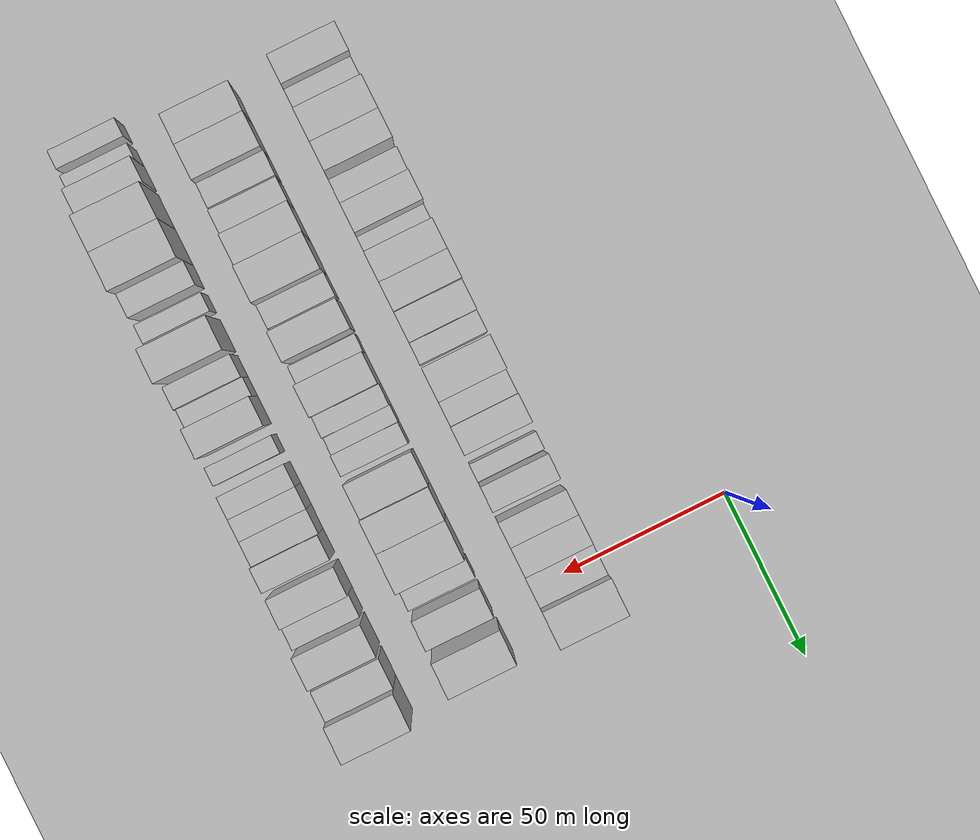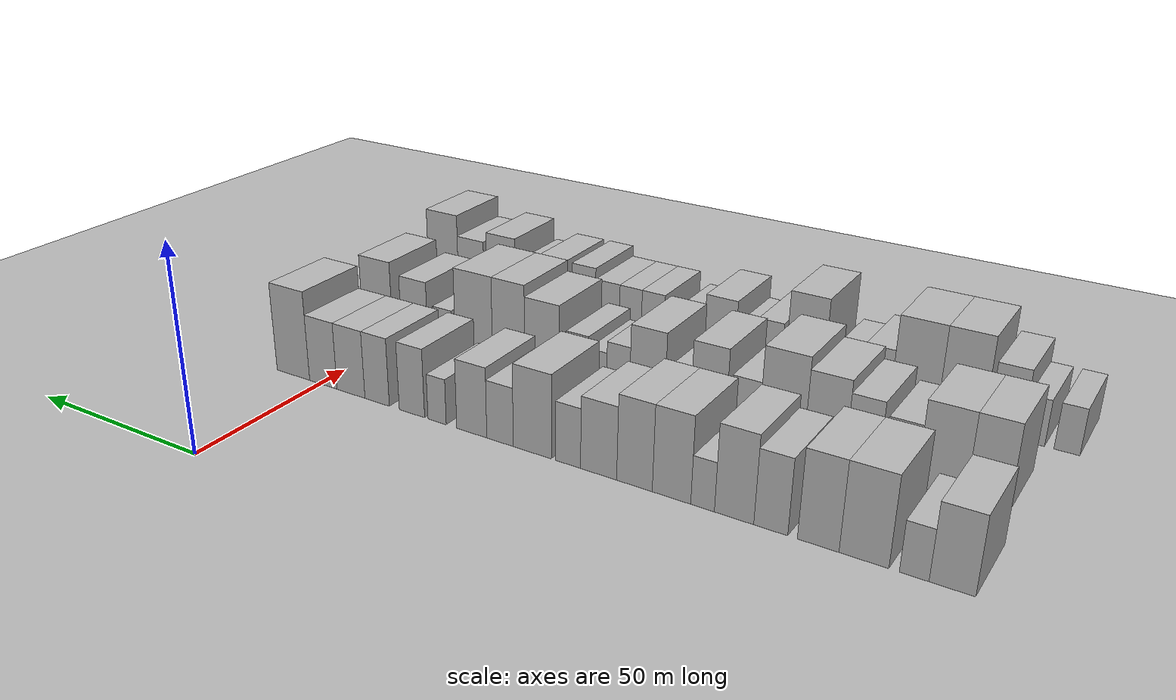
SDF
<sdf version="1.6">
 <world name="default">
  <include><name>ground_plane_1</name><uri>model://HANNAS_ground_plane</uri></include>
  <include>
   <name>ground_plane_2</name>
   <uri>model://HANNAS_ground_plane</uri>
   <pose>100 0 0  0 0 0</pose>
  </include>
  <model name="building_19">
   <static>1</static>
   <pose>50.0000 -155.4612 0 0.000000 0.000000 0.000000</pose>
   <link name="link">
    <pose>0 0 9.00 0 0 0</pose>
    <collision name="collision"><geometry><box><size>20.0000 8.6519 18.0000</size></box></geometry></collision>
    <visual name="visual">
     <cast_shadows>0</cast_shadows>
     <geometry><box><size>20.0000 8.6519 18.0000</size></box></geometry>
     <material>
      <script>
       <uri>model://HANNAS_wall/materials/scripts</uri>
       <uri>model://HANNAS_wall/materials/textures</uri>
       <name>vrc/HANNAS_wall</name>
      </script>
     </material>
    </visual>
   </link>
  </model>
  <model name="building_20">
   <static>1</static>
   <pose>50.0000 -148.3077 0 0.000000 0.000000 0.000000</pose>
   <link name="link">
    <pose>0 0 6.00 0 0 0</pose>
    <collision name="collision"><geometry><box><size>20.0000 5.6550 12.0000</size></box></geometry></collision>
    <visual name="visual">
     <cast_shadows>0</cast_shadows>
     <geometry><box><size>20.0000 5.6550 12.0000</size></box></geometry>
     <material>
      <script>
       <uri>model://HANNAS_wall/materials/scripts</uri>
       <uri>model://HANNAS_wall/materials/textures</uri>
       <name>vrc/HANNAS_wall</name>
      </script>
     </material>
    </visual>
   </link>
  </model>
  <model name="building_21">
   <static>1</static>
   <pose>50.0000 -138.5372 0 0.000000 0.000000 0.000000</pose>
   <link name="link">
    <pose>0 0 10.50 0 0 0</pose>
    <collision name="collision"><geometry><box><size>20.0000 9.8859 21.0000</size></box></geometry></collision>
    <visual name="visual">
     <cast_shadows>0</cast_shadows>
     <geometry><box><size>20.0000 9.8859 21.0000</size></box></geometry>
     <material>
      <script>
       <uri>model://HANNAS_wall/materials/scripts</uri>
       <uri>model://HANNAS_wall/materials/textures</uri>
       <name>vrc/HANNAS_wall</name>
      </script>
     </material>
    </visual>
   </link>
  </model>
  <model name="building_22">
   <static>1</static>
   <pose>50.0000 -129.3131 0 0.000000 0.000000 0.000000</pose>
   <link name="link">
    <pose>0 0 10.50 0 0 0</pose>
    <collision name="collision"><geometry><box><size>20.0000 8.5625 21.0000</size></box></geometry></collision>
    <visual name="visual">
     <cast_shadows>0</cast_shadows>
     <geometry><box><size>20.0000 8.5625 21.0000</size></box></geometry>
     <material>
      <script>
       <uri>model://HANNAS_wall/materials/scripts</uri>
       <uri>model://HANNAS_wall/materials/textures</uri>
       <name>vrc/HANNAS_wall</name>
      </script>
     </material>
    </visual>
   </link>
  </model>
  <model name="building_23">
   <static>1</static>
   <pose>50.0000 -119.3993 0 0.000000 0.000000 0.000000</pose>
   <link name="link">
    <pose>0 0 9.00 0 0 0</pose>
    <collision name="collision"><geometry><box><size>20.0000 7.2651 18.0000</size></box></geometry></collision>
    <visual name="visual">
     <cast_shadows>0</cast_shadows>
     <geometry><box><size>20.0000 7.2651 18.0000</size></box></geometry>
     <material>
      <script>
       <uri>model://HANNAS_wall/materials/scripts</uri>
       <uri>model://HANNAS_wall/materials/textures</uri>
       <name>vrc/HANNAS_wall</name>
      </script>
     </material>
    </visual>
   </link>
  </model>
  <model name="building_24">
   <static>1</static>
   <pose>50.0000 -111.4311 0 0.000000 0.000000 0.000000</pose>
   <link name="link">
    <pose>0 0 10.50 0 0 0</pose>
    <collision name="collision"><geometry><box><size>20.0000 8.6713 21.0000</size></box></geometry></collision>
    <visual name="visual">
     <cast_shadows>0</cast_shadows>
     <geometry><box><size>20.0000 8.6713 21.0000</size></box></geometry>
     <material>
      <script>
       <uri>model://HANNAS_wall/materials/scripts</uri>
       <uri>model://HANNAS_wall/materials/textures</uri>
       <name>vrc/HANNAS_wall</name>
      </script>
     </material>
    </visual>
   </link>
  </model>
  <model name="building_25">
   <static>1</static>
   <pose>50.0000 -104.4094 0 0.000000 0.000000 0.000000</pose>
   <link name="link">
    <pose>0 0 6.00 0 0 0</pose>
    <collision name="collision"><geometry><box><size>20.0000 5.3721 12.0000</size></box></geometry></collision>
    <visual name="visual">
     <cast_shadows>0</cast_shadows>
     <geometry><box><size>20.0000 5.3721 12.0000</size></box></geometry>
     <material>
      <script>
       <uri>model://HANNAS_wall/materials/scripts</uri>
       <uri>model://HANNAS_wall/materials/textures</uri>
       <name>vrc/HANNAS_wall</name>
      </script>
     </material>
    </visual>
   </link>
  </model>
  <model name="building_26">
   <static>1</static>
   <pose>50.0000 -97.2492 0 0.000000 0.000000 0.000000</pose>
   <link name="link">
    <pose>0 0 10.50 0 0 0</pose>
    <collision name="collision"><geometry><box><size>20.0000 8.9485 21.0000</size></box></geometry></collision>
    <visual name="visual">
     <cast_shadows>0</cast_shadows>
     <geometry><box><size>20.0000 8.9485 21.0000</size></box></geometry>
     <material>
      <script>
       <uri>model://HANNAS_wall/materials/scripts</uri>
       <uri>model://HANNAS_wall/materials/textures</uri>
       <name>vrc/HANNAS_wall</name>
      </script>
     </material>
    </visual>
   </link>
  </model>
  <model name="building_27">
   <static>1</static>
   <pose>50.0000 -88.4928 0 0.000000 0.000000 0.000000</pose>
   <link name="link">
    <pose>0 0 10.50 0 0 0</pose>
    <collision name="collision"><geometry><box><size>20.0000 8.5643 21.0000</size></box></geometry></collision>
    <visual name="visual">
     <cast_shadows>0</cast_shadows>
     <geometry><box><size>20.0000 8.5643 21.0000</size></box></geometry>
     <material>
      <script>
       <uri>model://HANNAS_wall/materials/scripts</uri>
       <uri>model://HANNAS_wall/materials/textures</uri>
       <name>vrc/HANNAS_wall</name>
      </script>
     </material>
    </visual>
   </link>
  </model>
  <model name="building_28">
   <static>1</static>
   <pose>50.0000 -79.7274 0 0.000000 0.000000 0.000000</pose>
   <link name="link">
    <pose>0 0 9.00 0 0 0</pose>
    <collision name="collision"><geometry><box><size>20.0000 8.9664 18.0000</size></box></geometry></collision>
    <visual name="visual">
     <cast_shadows>0</cast_shadows>
     <geometry><box><size>20.0000 8.9664 18.0000</size></box></geometry>
     <material>
      <script>
       <uri>model://HANNAS_wall/materials/scripts</uri>
       <uri>model://HANNAS_wall/materials/textures</uri>
       <name>vrc/HANNAS_wall</name>
      </script>
     </material>
    </visual>
   </link>
  </model>
  <model name="building_29">
   <static>1</static>
   <pose>50.0000 -72.0207 0 0.000000 0.000000 0.000000</pose>
   <link name="link">
    <pose>0 0 7.50 0 0 0</pose>
    <collision name="collision"><geometry><box><size>20.0000 6.4469 15.0000</size></box></geometry></collision>
    <visual name="visual">
     <cast_shadows>0</cast_shadows>
     <geometry><box><size>20.0000 6.4469 15.0000</size></box></geometry>
     <material>
      <script>
       <uri>model://HANNAS_wall/materials/scripts</uri>
       <uri>model://HANNAS_wall/materials/textures</uri>
       <name>vrc/HANNAS_wall</name>
      </script>
     </material>
    </visual>
   </link>
  </model>
  <model name="building_30">
   <static>1</static>
   <pose>50.0000 -62.7804 0 0.000000 0.000000 0.000000</pose>
   <link name="link">
    <pose>0 0 10.50 0 0 0</pose>
    <collision name="collision"><geometry><box><size>20.0000 10.0338 21.0000</size></box></geometry></collision>
    <visual name="visual">
     <cast_shadows>0</cast_shadows>
     <geometry><box><size>20.0000 10.0338 21.0000</size></box></geometry>
     <material>
      <script>
       <uri>model://HANNAS_wall/materials/scripts</uri>
       <uri>model://HANNAS_wall/materials/textures</uri>
       <name>vrc/HANNAS_wall</name>
      </script>
     </material>
    </visual>
   </link>
  </model>
  <model name="building_31">
   <static>1</static>
   <pose>50.0000 -54.1605 0 0.000000 0.000000 0.000000</pose>
   <link name="link">
    <pose>0 0 7.50 0 0 0</pose>
    <collision name="collision"><geometry><box><size>20.0000 7.2061 15.0000</size></box></geometry></collision>
    <visual name="visual">
     <cast_shadows>0</cast_shadows>
     <geometry><box><size>20.0000 7.2061 15.0000</size></box></geometry>
     <material>
      <script>
       <uri>model://HANNAS_wall/materials/scripts</uri>
       <uri>model://HANNAS_wall/materials/textures</uri>
       <name>vrc/HANNAS_wall</name>
      </script>
     </material>
    </visual>
   </link>
  </model>
  <model name="building_32">
   <static>1</static>
   <pose>50.0000 -46.3682 0 0.000000 0.000000 0.000000</pose>
   <link name="link">
    <pose>0 0 9.00 0 0 0</pose>
    <collision name="collision"><geometry><box><size>20.0000 8.3784 18.0000</size></box></geometry></collision>
    <visual name="visual">
     <cast_shadows>0</cast_shadows>
     <geometry><box><size>20.0000 8.3784 18.0000</size></box></geometry>
     <material>
      <script>
       <uri>model://HANNAS_wall/materials/scripts</uri>
       <uri>model://HANNAS_wall/materials/textures</uri>
       <name>vrc/HANNAS_wall</name>
      </script>
     </material>
    </visual>
   </link>
  </model>
  <model name="building_33">
   <static>1</static>
   <pose>50.0000 -36.5530 0 0.000000 0.000000 0.000000</pose>
   <link name="link">
    <pose>0 0 6.00 0 0 0</pose>
    <collision name="collision"><geometry><box><size>20.0000 5.2521 12.0000</size></box></geometry></collision>
    <visual name="visual">
     <cast_shadows>0</cast_shadows>
     <geometry><box><size>20.0000 5.2521 12.0000</size></box></geometry>
     <material>
      <script>
       <uri>model://HANNAS_wall/materials/scripts</uri>
       <uri>model://HANNAS_wall/materials/textures</uri>
       <name>vrc/HANNAS_wall</name>
      </script>
     </material>
    </visual>
   </link>
  </model>
  <model name="building_34">
   <static>1</static>
   <pose>50.0000 -29.1841 0 0.000000 0.000000 0.000000</pose>
   <link name="link">
    <pose>0 0 9.00 0 0 0</pose>
    <collision name="collision"><geometry><box><size>20.0000 7.4859 18.0000</size></box></geometry></collision>
    <visual name="visual">
     <cast_shadows>0</cast_shadows>
     <geometry><box><size>20.0000 7.4859 18.0000</size></box></geometry>
     <material>
      <script>
       <uri>model://HANNAS_wall/materials/scripts</uri>
       <uri>model://HANNAS_wall/materials/textures</uri>
       <name>vrc/HANNAS_wall</name>
      </script>
     </material>
    </visual>
   </link>
  </model>
  <model name="building_35">
   <static>1</static>
   <pose>50.0000 -18.7066 0 0.000000 0.000000 0.000000</pose>
   <link name="link">
    <pose>0 0 9.00 0 0 0</pose>
    <collision name="collision"><geometry><box><size>20.0000 7.4691 18.0000</size></box></geometry></collision>
    <visual name="visual">
     <cast_shadows>0</cast_shadows>
     <geometry><box><size>20.0000 7.4691 18.0000</size></box></geometry>
     <material>
      <script>
       <uri>model://HANNAS_wall/materials/scripts</uri>
       <uri>model://HANNAS_wall/materials/textures</uri>
       <name>vrc/HANNAS_wall</name>
      </script>
     </material>
    </visual>
   </link>
  </model>
  <model name="building_36">
   <static>1</static>
   <pose>50.0000 -10.5973 0 0.000000 0.000000 0.000000</pose>
   <link name="link">
    <pose>0 0 9.00 0 0 0</pose>
    <collision name="collision"><geometry><box><size>20.0000 8.7495 18.0000</size></box></geometry></collision>
    <visual name="visual">
     <cast_shadows>0</cast_shadows>
     <geometry><box><size>20.0000 8.7495 18.0000</size></box></geometry>
     <material>
      <script>
       <uri>model://HANNAS_wall/materials/scripts</uri>
       <uri>model://HANNAS_wall/materials/textures</uri>
       <name>vrc/HANNAS_wall</name>
      </script>
     </material>
    </visual>
   </link>
  </model>
  <model name="building_37">
   <static>1</static>
   <pose>50.0000 -1.7808 0 0.000000 0.000000 0.000000</pose>
   <link name="link">
    <pose>0 0 9.00 0 0 0</pose>
    <collision name="collision"><geometry><box><size>20.0000 8.8835 18.0000</size></box></geometry></collision>
    <visual name="visual">
     <cast_shadows>0</cast_shadows>
     <geometry><box><size>20.0000 8.8835 18.0000</size></box></geometry>
     <material>
      <script>
       <uri>model://HANNAS_wall/materials/scripts</uri>
       <uri>model://HANNAS_wall/materials/textures</uri>
       <name>vrc/HANNAS_wall</name>
      </script>
     </material>
    </visual>
   </link>
  </model>
  <model name="building_38">
   <static>1</static>
   <pose>50.0000 8.0805 0 0.000000 0.000000 0.000000</pose>
   <link name="link">
    <pose>0 0 12.00 0 0 0</pose>
    <collision name="collision"><geometry><box><size>20.0000 10.8393 24.0000</size></box></geometry></collision>
    <visual name="visual">
     <cast_shadows>0</cast_shadows>
     <geometry><box><size>20.0000 10.8393 24.0000</size></box></geometry>
     <material>
      <script>
       <uri>model://HANNAS_wall/materials/scripts</uri>
       <uri>model://HANNAS_wall/materials/textures</uri>
       <name>vrc/HANNAS_wall</name>
      </script>
     </material>
    </visual>
   </link>
  </model>
  <model name="building_100">
   <static>1</static>
   <pose>82.0000 -153.0389 0 0.000000 0.000000 0.000000</pose>
   <link name="link">
    <pose>0 0 10.50 0 0 0</pose>
    <collision name="collision"><geometry><box><size>20.0000 8.8103 21.0000</size></box></geometry></collision>
    <visual name="visual">
     <cast_shadows>0</cast_shadows>
     <geometry><box><size>20.0000 8.8103 21.0000</size></box></geometry>
     <material>
      <script>
       <uri>model://HANNAS_wall/materials/scripts</uri>
       <uri>model://HANNAS_wall/materials/textures</uri>
       <name>vrc/HANNAS_wall</name>
      </script>
     </material>
    </visual>
   </link>
  </model>
  <model name="building_101">
   <static>1</static>
   <pose>82.0000 -143.4836 0 0.000000 0.000000 0.000000</pose>
   <link name="link">
    <pose>0 0 10.50 0 0 0</pose>
    <collision name="collision"><geometry><box><size>20.0000 10.3005 21.0000</size></box></geometry></collision>
    <visual name="visual">
     <cast_shadows>0</cast_shadows>
     <geometry><box><size>20.0000 10.3005 21.0000</size></box></geometry>
     <material>
      <script>
       <uri>model://HANNAS_wall/materials/scripts</uri>
       <uri>model://HANNAS_wall/materials/textures</uri>
       <name>vrc/HANNAS_wall</name>
      </script>
     </material>
    </visual>
   </link>
  </model>
  <model name="building_102">
   <static>1</static>
   <pose>82.0000 -134.6725 0 0.000000 0.000000 0.000000</pose>
   <link name="link">
    <pose>0 0 7.50 0 0 0</pose>
    <collision name="collision"><geometry><box><size>20.0000 7.3217 15.0000</size></box></geometry></collision>
    <visual name="visual">
     <cast_shadows>0</cast_shadows>
     <geometry><box><size>20.0000 7.3217 15.0000</size></box></geometry>
     <material>
      <script>
       <uri>model://HANNAS_wall/materials/scripts</uri>
       <uri>model://HANNAS_wall/materials/textures</uri>
       <name>vrc/HANNAS_wall</name>
      </script>
     </material>
    </visual>
   </link>
  </model>
  <model name="building_103">
   <static>1</static>
   <pose>82.0000 -126.2698 0 0.000000 0.000000 0.000000</pose>
   <link name="link">
    <pose>0 0 9.00 0 0 0</pose>
    <collision name="collision"><geometry><box><size>20.0000 7.4837 18.0000</size></box></geometry></collision>
    <visual name="visual">
     <cast_shadows>0</cast_shadows>
     <geometry><box><size>20.0000 7.4837 18.0000</size></box></geometry>
     <material>
      <script>
       <uri>model://HANNAS_wall/materials/scripts</uri>
       <uri>model://HANNAS_wall/materials/textures</uri>
       <name>vrc/HANNAS_wall</name>
      </script>
     </material>
    </visual>
   </link>
  </model>
  <model name="building_104">
   <static>1</static>
   <pose>82.0000 -117.8006 0 0.000000 0.000000 0.000000</pose>
   <link name="link">
    <pose>0 0 10.50 0 0 0</pose>
    <collision name="collision"><geometry><box><size>20.0000 9.4548 21.0000</size></box></geometry></collision>
    <visual name="visual">
     <cast_shadows>0</cast_shadows>
     <geometry><box><size>20.0000 9.4548 21.0000</size></box></geometry>
     <material>
      <script>
       <uri>model://HANNAS_wall/materials/scripts</uri>
       <uri>model://HANNAS_wall/materials/textures</uri>
       <name>vrc/HANNAS_wall</name>
      </script>
     </material>
    </visual>
   </link>
  </model>
  <model name="building_105">
   <static>1</static>
   <pose>82.0000 -107.7001 0 0.000000 0.000000 0.000000</pose>
   <link name="link">
    <pose>0 0 12.00 0 0 0</pose>
    <collision name="collision"><geometry><box><size>20.0000 10.7462 24.0000</size></box></geometry></collision>
    <visual name="visual">
     <cast_shadows>0</cast_shadows>
     <geometry><box><size>20.0000 10.7462 24.0000</size></box></geometry>
     <material>
      <script>
       <uri>model://HANNAS_wall/materials/scripts</uri>
       <uri>model://HANNAS_wall/materials/textures</uri>
       <name>vrc/HANNAS_wall</name>
      </script>
     </material>
    </visual>
   </link>
  </model>
  <model name="building_106">
   <static>1</static>
   <pose>82.0000 -98.7619 0 0.000000 0.000000 0.000000</pose>
   <link name="link">
    <pose>0 0 7.50 0 0 0</pose>
    <collision name="collision"><geometry><box><size>20.0000 7.1302 15.0000</size></box></geometry></collision>
    <visual name="visual">
     <cast_shadows>0</cast_shadows>
     <geometry><box><size>20.0000 7.1302 15.0000</size></box></geometry>
     <material>
      <script>
       <uri>model://HANNAS_wall/materials/scripts</uri>
       <uri>model://HANNAS_wall/materials/textures</uri>
       <name>vrc/HANNAS_wall</name>
      </script>
     </material>
    </visual>
   </link>
  </model>
  <model name="building_107">
   <static>1</static>
   <pose>82.0000 -89.7395 0 0.000000 0.000000 0.000000</pose>
   <link name="link">
    <pose>0 0 10.50 0 0 0</pose>
    <collision name="collision"><geometry><box><size>20.0000 8.9145 21.0000</size></box></geometry></collision>
    <visual name="visual">
     <cast_shadows>0</cast_shadows>
     <geometry><box><size>20.0000 8.9145 21.0000</size></box></geometry>
     <material>
      <script>
       <uri>model://HANNAS_wall/materials/scripts</uri>
       <uri>model://HANNAS_wall/materials/textures</uri>
       <name>vrc/HANNAS_wall</name>
      </script>
     </material>
    </visual>
   </link>
  </model>
  <model name="building_108">
   <static>1</static>
   <pose>82.0000 -81.4447 0 0.000000 0.000000 0.000000</pose>
   <link name="link">
    <pose>0 0 6.00 0 0 0</pose>
    <collision name="collision"><geometry><box><size>20.0000 5.6751 12.0000</size></box></geometry></collision>
    <visual name="visual">
     <cast_shadows>0</cast_shadows>
     <geometry><box><size>20.0000 5.6751 12.0000</size></box></geometry>
     <material>
      <script>
       <uri>model://HANNAS_wall/materials/scripts</uri>
       <uri>model://HANNAS_wall/materials/textures</uri>
       <name>vrc/HANNAS_wall</name>
      </script>
     </material>
    </visual>
   </link>
  </model>
  <model name="building_109">
   <static>1</static>
   <pose>82.0000 -73.9082 0 0.000000 0.000000 0.000000</pose>
   <link name="link">
    <pose>0 0 10.50 0 0 0</pose>
    <collision name="collision"><geometry><box><size>20.0000 9.3980 21.0000</size></box></geometry></collision>
    <visual name="visual">
     <cast_shadows>0</cast_shadows>
     <geometry><box><size>20.0000 9.3980 21.0000</size></box></geometry>
     <material>
      <script>
       <uri>model://HANNAS_wall/materials/scripts</uri>
       <uri>model://HANNAS_wall/materials/textures</uri>
       <name>vrc/HANNAS_wall</name>
      </script>
     </material>
    </visual>
   </link>
  </model>
  <model name="building_110">
   <static>1</static>
   <pose>82.0000 -66.0649 0 0.000000 0.000000 0.000000</pose>
   <link name="link">
    <pose>0 0 7.50 0 0 0</pose>
    <collision name="collision"><geometry><box><size>20.0000 6.2885 15.0000</size></box></geometry></collision>
    <visual name="visual">
     <cast_shadows>0</cast_shadows>
     <geometry><box><size>20.0000 6.2885 15.0000</size></box></geometry>
     <material>
      <script>
       <uri>model://HANNAS_wall/materials/scripts</uri>
       <uri>model://HANNAS_wall/materials/textures</uri>
       <name>vrc/HANNAS_wall</name>
      </script>
     </material>
    </visual>
   </link>
  </model>
  <model name="building_111">
   <static>1</static>
   <pose>82.0000 -60.3896 0 0.000000 0.000000 0.000000</pose>
   <link name="link">
    <pose>0 0 6.00 0 0 0</pose>
    <collision name="collision"><geometry><box><size>20.0000 5.0622 12.0000</size></box></geometry></collision>
    <visual name="visual">
     <cast_shadows>0</cast_shadows>
     <geometry><box><size>20.0000 5.0622 12.0000</size></box></geometry>
     <material>
      <script>
       <uri>model://HANNAS_wall/materials/scripts</uri>
       <uri>model://HANNAS_wall/materials/textures</uri>
       <name>vrc/HANNAS_wall</name>
      </script>
     </material>
    </visual>
   </link>
  </model>
  <model name="building_112">
   <static>1</static>
   <pose>82.0000 -54.6993 0 0.000000 0.000000 0.000000</pose>
   <link name="link">
    <pose>0 0 7.50 0 0 0</pose>
    <collision name="collision"><geometry><box><size>20.0000 6.3184 15.0000</size></box></geometry></collision>
    <visual name="visual">
     <cast_shadows>0</cast_shadows>
     <geometry><box><size>20.0000 6.3184 15.0000</size></box></geometry>
     <material>
      <script>
       <uri>model://HANNAS_wall/materials/scripts</uri>
       <uri>model://HANNAS_wall/materials/textures</uri>
       <name>vrc/HANNAS_wall</name>
      </script>
     </material>
    </visual>
   </link>
  </model>
  <model name="building_113">
   <static>1</static>
   <pose>82.0000 -44.5033 0 0.000000 0.000000 0.000000</pose>
   <link name="link">
    <pose>0 0 10.50 0 0 0</pose>
    <collision name="collision"><geometry><box><size>20.0000 10.0735 21.0000</size></box></geometry></collision>
    <visual name="visual">
     <cast_shadows>0</cast_shadows>
     <geometry><box><size>20.0000 10.0735 21.0000</size></box></geometry>
     <material>
      <script>
       <uri>model://HANNAS_wall/materials/scripts</uri>
       <uri>model://HANNAS_wall/materials/textures</uri>
       <name>vrc/HANNAS_wall</name>
      </script>
     </material>
    </visual>
   </link>
  </model>
  <model name="building_114">
   <static>1</static>
   <pose>82.0000 -34.6081 0 0.000000 0.000000 0.000000</pose>
   <link name="link">
    <pose>0 0 12.00 0 0 0</pose>
    <collision name="collision"><geometry><box><size>20.0000 9.7171 24.0000</size></box></geometry></collision>
    <visual name="visual">
     <cast_shadows>0</cast_shadows>
     <geometry><box><size>20.0000 9.7171 24.0000</size></box></geometry>
     <material>
      <script>
       <uri>model://HANNAS_wall/materials/scripts</uri>
       <uri>model://HANNAS_wall/materials/textures</uri>
       <name>vrc/HANNAS_wall</name>
      </script>
     </material>
    </visual>
   </link>
  </model>
  <model name="building_115">
   <static>1</static>
   <pose>82.0000 -23.9654 0 0.000000 0.000000 0.000000</pose>
   <link name="link">
    <pose>0 0 12.00 0 0 0</pose>
    <collision name="collision"><geometry><box><size>20.0000 11.5682 24.0000</size></box></geometry></collision>
    <visual name="visual">
     <cast_shadows>0</cast_shadows>
     <geometry><box><size>20.0000 11.5682 24.0000</size></box></geometry>
     <material>
      <script>
       <uri>model://HANNAS_wall/materials/scripts</uri>
       <uri>model://HANNAS_wall/materials/textures</uri>
       <name>vrc/HANNAS_wall</name>
      </script>
     </material>
    </visual>
   </link>
  </model>
  <model name="building_116">
   <static>1</static>
   <pose>82.0000 -14.2095 0 0.000000 0.000000 0.000000</pose>
   <link name="link">
    <pose>0 0 6.00 0 0 0</pose>
    <collision name="collision"><geometry><box><size>20.0000 5.9436 12.0000</size></box></geometry></collision>
    <visual name="visual">
     <cast_shadows>0</cast_shadows>
     <geometry><box><size>20.0000 5.9436 12.0000</size></box></geometry>
     <material>
      <script>
       <uri>model://HANNAS_wall/materials/scripts</uri>
       <uri>model://HANNAS_wall/materials/textures</uri>
       <name>vrc/HANNAS_wall</name>
      </script>
     </material>
    </visual>
   </link>
  </model>
  <model name="building_117">
   <static>1</static>
   <pose>82.0000 -4.8781 0 0.000000 0.000000 0.000000</pose>
   <link name="link">
    <pose>0 0 9.00 0 0 0</pose>
    <collision name="collision"><geometry><box><size>20.0000 8.7193 18.0000</size></box></geometry></collision>
    <visual name="visual">
     <cast_shadows>0</cast_shadows>
     <geometry><box><size>20.0000 8.7193 18.0000</size></box></geometry>
     <material>
      <script>
       <uri>model://HANNAS_wall/materials/scripts</uri>
       <uri>model://HANNAS_wall/materials/textures</uri>
       <name>vrc/HANNAS_wall</name>
      </script>
     </material>
    </visual>
   </link>
  </model>
  <model name="building_118">
   <static>1</static>
   <pose>82.0000 7.6115 0 0.000000 0.000000 0.000000</pose>
   <link name="link">
    <pose>0 0 10.50 0 0 0</pose>
    <collision name="collision"><geometry><box><size>20.0000 10.2599 21.0000</size></box></geometry></collision>
    <visual name="visual">
     <cast_shadows>0</cast_shadows>
     <geometry><box><size>20.0000 10.2599 21.0000</size></box></geometry>
     <material>
      <script>
       <uri>model://HANNAS_wall/materials/scripts</uri>
       <uri>model://HANNAS_wall/materials/textures</uri>
       <name>vrc/HANNAS_wall</name>
      </script>
     </material>
    </visual>
   </link>
  </model>
  <model name="building_178">
   <static>1</static>
   <pose>114.0000 -161.7230 0 0.000000 0.000000 0.000000</pose>
   <link name="link">
    <pose>0 0 6.00 0 0 0</pose>
    <collision name="collision"><geometry><box><size>20.0000 5.5068 12.0000</size></box></geometry></collision>
    <visual name="visual">
     <cast_shadows>0</cast_shadows>
     <geometry><box><size>20.0000 5.5068 12.0000</size></box></geometry>
     <material>
      <script>
       <uri>model://HANNAS_wall/materials/scripts</uri>
       <uri>model://HANNAS_wall/materials/textures</uri>
       <name>vrc/HANNAS_wall</name>
      </script>
     </material>
    </visual>
   </link>
  </model>
  <model name="building_179">
   <static>1</static>
   <pose>114.0000 -154.4516 0 0.000000 0.000000 0.000000</pose>
   <link name="link">
    <pose>0 0 6.00 0 0 0</pose>
    <collision name="collision"><geometry><box><size>20.0000 5.0359 12.0000</size></box></geometry></collision>
    <visual name="visual">
     <cast_shadows>0</cast_shadows>
     <geometry><box><size>20.0000 5.0359 12.0000</size></box></geometry>
     <material>
      <script>
       <uri>model://HANNAS_wall/materials/scripts</uri>
       <uri>model://HANNAS_wall/materials/textures</uri>
       <name>vrc/HANNAS_wall</name>
      </script>
     </material>
    </visual>
   </link>
  </model>
  <model name="building_180">
   <static>1</static>
   <pose>114.0000 -148.1433 0 0.000000 0.000000 0.000000</pose>
   <link name="link">
    <pose>0 0 9.00 0 0 0</pose>
    <collision name="collision"><geometry><box><size>20.0000 7.5808 18.0000</size></box></geometry></collision>
    <visual name="visual">
     <cast_shadows>0</cast_shadows>
     <geometry><box><size>20.0000 7.5808 18.0000</size></box></geometry>
     <material>
      <script>
       <uri>model://HANNAS_wall/materials/scripts</uri>
       <uri>model://HANNAS_wall/materials/textures</uri>
       <name>vrc/HANNAS_wall</name>
      </script>
     </material>
    </visual>
   </link>
  </model>
  <model name="building_181">
   <static>1</static>
   <pose>114.0000 -138.0371 0 0.000000 0.000000 0.000000</pose>
   <link name="link">
    <pose>0 0 12.00 0 0 0</pose>
    <collision name="collision"><geometry><box><size>20.0000 10.6314 24.0000</size></box></geometry></collision>
    <visual name="visual">
     <cast_shadows>0</cast_shadows>
     <geometry><box><size>20.0000 10.6314 24.0000</size></box></geometry>
     <material>
      <script>
       <uri>model://HANNAS_wall/materials/scripts</uri>
       <uri>model://HANNAS_wall/materials/textures</uri>
       <name>vrc/HANNAS_wall</name>
      </script>
     </material>
    </visual>
   </link>
  </model>
  <model name="building_182">
   <static>1</static>
   <pose>114.0000 -127.1126 0 0.000000 0.000000 0.000000</pose>
   <link name="link">
    <pose>0 0 12.00 0 0 0</pose>
    <collision name="collision"><geometry><box><size>20.0000 11.2176 24.0000</size></box></geometry></collision>
    <visual name="visual">
     <cast_shadows>0</cast_shadows>
     <geometry><box><size>20.0000 11.2176 24.0000</size></box></geometry>
     <material>
      <script>
       <uri>model://HANNAS_wall/materials/scripts</uri>
       <uri>model://HANNAS_wall/materials/textures</uri>
       <name>vrc/HANNAS_wall</name>
      </script>
     </material>
    </visual>
   </link>
  </model>
  <model name="building_183">
   <static>1</static>
   <pose>114.0000 -117.9470 0 0.000000 0.000000 0.000000</pose>
   <link name="link">
    <pose>0 0 7.50 0 0 0</pose>
    <collision name="collision"><geometry><box><size>20.0000 7.1137 15.0000</size></box></geometry></collision>
    <visual name="visual">
     <cast_shadows>0</cast_shadows>
     <geometry><box><size>20.0000 7.1137 15.0000</size></box></geometry>
     <material>
      <script>
       <uri>model://HANNAS_wall/materials/scripts</uri>
       <uri>model://HANNAS_wall/materials/textures</uri>
       <name>vrc/HANNAS_wall</name>
      </script>
     </material>
    </visual>
   </link>
  </model>
  <model name="building_184">
   <static>1</static>
   <pose>114.0000 -109.6063 0 0.000000 0.000000 0.000000</pose>
   <link name="link">
    <pose>0 0 6.00 0 0 0</pose>
    <collision name="collision"><geometry><box><size>20.0000 5.5677 12.0000</size></box></geometry></collision>
    <visual name="visual">
     <cast_shadows>0</cast_shadows>
     <geometry><box><size>20.0000 5.5677 12.0000</size></box></geometry>
     <material>
      <script>
       <uri>model://HANNAS_wall/materials/scripts</uri>
       <uri>model://HANNAS_wall/materials/textures</uri>
       <name>vrc/HANNAS_wall</name>
      </script>
     </material>
    </visual>
   </link>
  </model>
  <model name="building_185">
   <static>1</static>
   <pose>114.0000 -99.8552 0 0.000000 0.000000 0.000000</pose>
   <link name="link">
    <pose>0 0 12.00 0 0 0</pose>
    <collision name="collision"><geometry><box><size>20.0000 9.9346 24.0000</size></box></geometry></collision>
    <visual name="visual">
     <cast_shadows>0</cast_shadows>
     <geometry><box><size>20.0000 9.9346 24.0000</size></box></geometry>
     <material>
      <script>
       <uri>model://HANNAS_wall/materials/scripts</uri>
       <uri>model://HANNAS_wall/materials/textures</uri>
       <name>vrc/HANNAS_wall</name>
      </script>
     </material>
    </visual>
   </link>
  </model>
  <model name="building_186">
   <static>1</static>
   <pose>114.0000 -90.5147 0 0.000000 0.000000 0.000000</pose>
   <link name="link">
    <pose>0 0 7.50 0 0 0</pose>
    <collision name="collision"><geometry><box><size>20.0000 6.7464 15.0000</size></box></geometry></collision>
    <visual name="visual">
     <cast_shadows>0</cast_shadows>
     <geometry><box><size>20.0000 6.7464 15.0000</size></box></geometry>
     <material>
      <script>
       <uri>model://HANNAS_wall/materials/scripts</uri>
       <uri>model://HANNAS_wall/materials/textures</uri>
       <name>vrc/HANNAS_wall</name>
      </script>
     </material>
    </visual>
   </link>
  </model>
  <model name="building_187">
   <static>1</static>
   <pose>114.0000 -84.2983 0 0.000000 0.000000 0.000000</pose>
   <link name="link">
    <pose>0 0 6.00 0 0 0</pose>
    <collision name="collision"><geometry><box><size>20.0000 5.6863 12.0000</size></box></geometry></collision>
    <visual name="visual">
     <cast_shadows>0</cast_shadows>
     <geometry><box><size>20.0000 5.6863 12.0000</size></box></geometry>
     <material>
      <script>
       <uri>model://HANNAS_wall/materials/scripts</uri>
       <uri>model://HANNAS_wall/materials/textures</uri>
       <name>vrc/HANNAS_wall</name>
      </script>
     </material>
    </visual>
   </link>
  </model>
  <model name="building_188">
   <static>1</static>
   <pose>114.0000 -77.1173 0 0.000000 0.000000 0.000000</pose>
   <link name="link">
    <pose>0 0 9.00 0 0 0</pose>
    <collision name="collision"><geometry><box><size>20.0000 8.6757 18.0000</size></box></geometry></collision>
    <visual name="visual">
     <cast_shadows>0</cast_shadows>
     <geometry><box><size>20.0000 8.6757 18.0000</size></box></geometry>
     <material>
      <script>
       <uri>model://HANNAS_wall/materials/scripts</uri>
       <uri>model://HANNAS_wall/materials/textures</uri>
       <name>vrc/HANNAS_wall</name>
      </script>
     </material>
    </visual>
   </link>
  </model>
  <model name="building_189">
   <static>1</static>
   <pose>114.0000 -67.0629 0 0.000000 0.000000 0.000000</pose>
   <link name="link">
    <pose>0 0 6.00 0 0 0</pose>
    <collision name="collision"><geometry><box><size>20.0000 5.4330 12.0000</size></box></geometry></collision>
    <visual name="visual">
     <cast_shadows>0</cast_shadows>
     <geometry><box><size>20.0000 5.4330 12.0000</size></box></geometry>
     <material>
      <script>
       <uri>model://HANNAS_wall/materials/scripts</uri>
       <uri>model://HANNAS_wall/materials/textures</uri>
       <name>vrc/HANNAS_wall</name>
      </script>
     </material>
    </visual>
   </link>
  </model>
  <model name="building_190">
   <static>1</static>
   <pose>114.0000 -57.9947 0 0.000000 0.000000 0.000000</pose>
   <link name="link">
    <pose>0 0 7.50 0 0 0</pose>
    <collision name="collision"><geometry><box><size>20.0000 6.7034 15.0000</size></box></geometry></collision>
    <visual name="visual">
     <cast_shadows>0</cast_shadows>
     <geometry><box><size>20.0000 6.7034 15.0000</size></box></geometry>
     <material>
      <script>
       <uri>model://HANNAS_wall/materials/scripts</uri>
       <uri>model://HANNAS_wall/materials/textures</uri>
       <name>vrc/HANNAS_wall</name>
      </script>
     </material>
    </visual>
   </link>
  </model>
  <model name="building_191">
   <static>1</static>
   <pose>114.0000 -51.3488 0 0.000000 0.000000 0.000000</pose>
   <link name="link">
    <pose>0 0 7.50 0 0 0</pose>
    <collision name="collision"><geometry><box><size>20.0000 6.5884 15.0000</size></box></geometry></collision>
    <visual name="visual">
     <cast_shadows>0</cast_shadows>
     <geometry><box><size>20.0000 6.5884 15.0000</size></box></geometry>
     <material>
      <script>
       <uri>model://HANNAS_wall/materials/scripts</uri>
       <uri>model://HANNAS_wall/materials/textures</uri>
       <name>vrc/HANNAS_wall</name>
      </script>
     </material>
    </visual>
   </link>
  </model>
  <model name="building_192">
   <static>1</static>
   <pose>114.0000 -44.3716 0 0.000000 0.000000 0.000000</pose>
   <link name="link">
    <pose>0 0 7.50 0 0 0</pose>
    <collision name="collision"><geometry><box><size>20.0000 7.3660 15.0000</size></box></geometry></collision>
    <visual name="visual">
     <cast_shadows>0</cast_shadows>
     <geometry><box><size>20.0000 7.3660 15.0000</size></box></geometry>
     <material>
      <script>
       <uri>model://HANNAS_wall/materials/scripts</uri>
       <uri>model://HANNAS_wall/materials/textures</uri>
       <name>vrc/HANNAS_wall</name>
      </script>
     </material>
    </visual>
   </link>
  </model>
  <model name="building_193">
   <static>1</static>
   <pose>114.0000 -37.0187 0 0.000000 0.000000 0.000000</pose>
   <link name="link">
    <pose>0 0 9.00 0 0 0</pose>
    <collision name="collision"><geometry><box><size>20.0000 7.3397 18.0000</size></box></geometry></collision>
    <visual name="visual">
     <cast_shadows>0</cast_shadows>
     <geometry><box><size>20.0000 7.3397 18.0000</size></box></geometry>
     <material>
      <script>
       <uri>model://HANNAS_wall/materials/scripts</uri>
       <uri>model://HANNAS_wall/materials/textures</uri>
       <name>vrc/HANNAS_wall</name>
      </script>
     </material>
    </visual>
   </link>
  </model>
  <model name="building_194">
   <static>1</static>
   <pose>114.0000 -27.0351 0 0.000000 0.000000 0.000000</pose>
   <link name="link">
    <pose>0 0 9.00 0 0 0</pose>
    <collision name="collision"><geometry><box><size>20.0000 8.6275 18.0000</size></box></geometry></collision>
    <visual name="visual">
     <cast_shadows>0</cast_shadows>
     <geometry><box><size>20.0000 8.6275 18.0000</size></box></geometry>
     <material>
      <script>
       <uri>model://HANNAS_wall/materials/scripts</uri>
       <uri>model://HANNAS_wall/materials/textures</uri>
       <name>vrc/HANNAS_wall</name>
      </script>
     </material>
    </visual>
   </link>
  </model>
  <model name="building_195">
   <static>1</static>
   <pose>114.0000 -19.3677 0 0.000000 0.000000 0.000000</pose>
   <link name="link">
    <pose>0 0 7.50 0 0 0</pose>
    <collision name="collision"><geometry><box><size>20.0000 6.7073 15.0000</size></box></geometry></collision>
    <visual name="visual">
     <cast_shadows>0</cast_shadows>
     <geometry><box><size>20.0000 6.7073 15.0000</size></box></geometry>
     <material>
      <script>
       <uri>model://HANNAS_wall/materials/scripts</uri>
       <uri>model://HANNAS_wall/materials/textures</uri>
       <name>vrc/HANNAS_wall</name>
      </script>
     </material>
    </visual>
   </link>
  </model>
  <model name="building_196">
   <static>1</static>
   <pose>114.0000 -10.2489 0 0.000000 0.000000 0.000000</pose>
   <link name="link">
    <pose>0 0 10.50 0 0 0</pose>
    <collision name="collision"><geometry><box><size>20.0000 9.5302 21.0000</size></box></geometry></collision>
    <visual name="visual">
     <cast_shadows>0</cast_shadows>
     <geometry><box><size>20.0000 9.5302 21.0000</size></box></geometry>
     <material>
      <script>
       <uri>model://HANNAS_wall/materials/scripts</uri>
       <uri>model://HANNAS_wall/materials/textures</uri>
       <name>vrc/HANNAS_wall</name>
      </script>
     </material>
    </visual>
   </link>
  </model>
  <model name="building_197">
   <static>1</static>
   <pose>114.0000 -0.0330 0 0.000000 0.000000 0.000000</pose>
   <link name="link">
    <pose>0 0 9.00 0 0 0</pose>
    <collision name="collision"><geometry><box><size>20.0000 8.9017 18.0000</size></box></geometry></collision>
    <visual name="visual">
     <cast_shadows>0</cast_shadows>
     <geometry><box><size>20.0000 8.9017 18.0000</size></box></geometry>
     <material>
      <script>
       <uri>model://HANNAS_wall/materials/scripts</uri>
       <uri>model://HANNAS_wall/materials/textures</uri>
       <name>vrc/HANNAS_wall</name>
      </script>
     </material>
    </visual>
   </link>
  </model>
  <model name="building_198">
   <static>1</static>
   <pose>114.0000 9.7013 0 0.000000 0.000000 0.000000</pose>
   <link name="link">
    <pose>0 0 12.00 0 0 0</pose>
    <collision name="collision"><geometry><box><size>20.0000 10.5668 24.0000</size></box></geometry></collision>
    <visual name="visual">
     <cast_shadows>0</cast_shadows>
     <geometry><box><size>20.0000 10.5668 24.0000</size></box></geometry>
     <material>
      <script>
       <uri>model://HANNAS_wall/materials/scripts</uri>
       <uri>model://HANNAS_wall/materials/textures</uri>
       <name>vrc/HANNAS_wall</name>
      </script>
     </material>
    </visual>
   </link>
  </model>
 </world>
</sdf>
